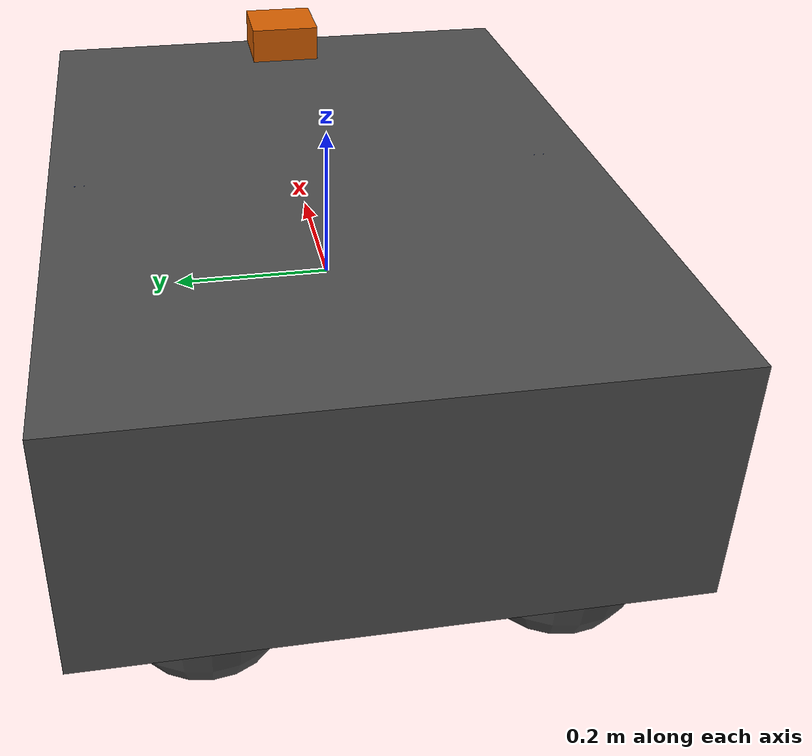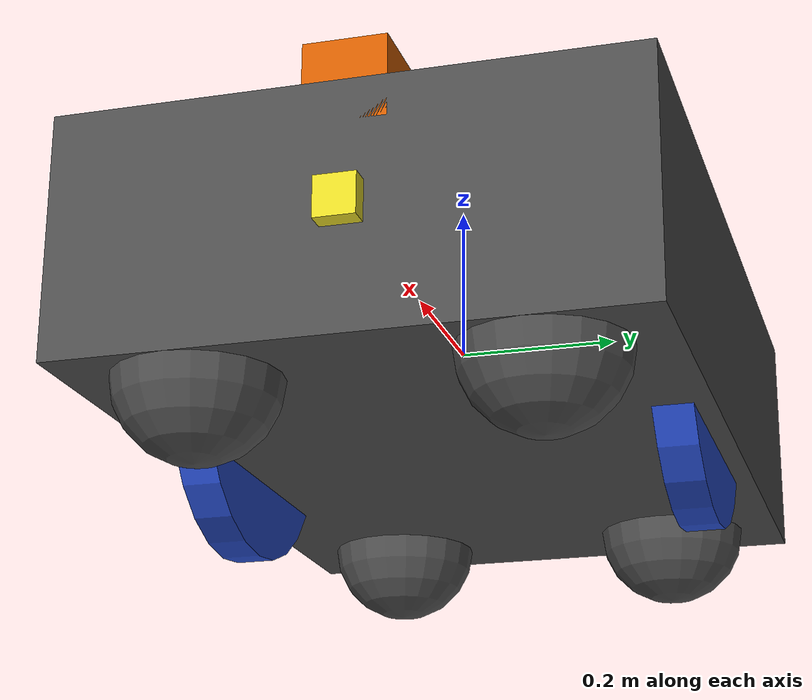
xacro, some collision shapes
<robot name="my_robot" xmlns:xacro="http://www.ros.org/wiki/xacro">
    <xacro:include filename="$(find my_robot)/urdf/my_robot.gazebo"/>
    <link name="robot_footprint"/>
    <joint name="robot_footprint_joint" type="fixed">
        <origin xyz="0 0 0" rpy="0 0 0"/>
        <parent link="robot_footprint"/>
        <child link="chassis"/>
    </joint>
    <link name='chassis'>
        <pose>0 0 0.3 0 0 0</pose>

        <inertial>
            <mass value="15.0"/>
            <origin xyz="0.0 0 0" rpy=" 0 0 0"/>
            <inertia
                ixx="0.1" ixy="0" ixz="0"
                iyy="0.1" iyz="0"
                izz="0.1"
            />
        </inertial>

        <collision name='collision'>
            <origin xyz="0 0 0" rpy=" 0 0 0"/>
            <geometry>
                <box size="1.0 .7 .3"/>
            </geometry>
        </collision>

        <visual name='chassis_visual'>
        <origin xyz="0 0 0" rpy=" 0 0 0"/>
            <geometry>
                <box size="1.0 .7 .3"/>
            </geometry>
        </visual>

        <collision name='back_right_caster_collision'>
            <origin xyz="-0.4 -0.2 -0.15" rpy=" 0 0 0"/>
            <geometry>
                <sphere radius="0.1"/>
            </geometry>
        </collision>

        <visual name='back_right_caster_visual'>
            <origin xyz="-0.4 -0.2 -0.15" rpy=" 0 0 0"/>
            <geometry>
                <sphere radius="0.1"/>
            </geometry>
        </visual>

        <collision name='front_right_caster_collision'>
            <origin xyz="0.4 -0.2 -0.15" rpy=" 0 0 0"/>
            <geometry>
                <sphere radius="0.1"/>
            </geometry>
        </collision>

        <visual name='front_right_caster_visual'>
            <origin xyz="0.4 -0.2 -0.15" rpy=" 0 0 0"/>
            <geometry>
                <sphere radius="0.1"/>
            </geometry>
        </visual>

        <collision name='back_left_caster_collision'>
            <origin xyz="-0.4 0.2 -0.15" rpy=" 0 0 0"/>
            <geometry>
                <sphere radius="0.1"/>
            </geometry>
        </collision>

        <visual name='back_left_caster_visual'>
            <origin xyz="-0.4 0.2 -0.15" rpy=" 0 0 0"/>
            <geometry>
                <sphere radius="0.1"/>
            </geometry>
        </visual>

        <collision name='front_left_caster_collision'>
            <origin xyz="0.4 0.2 -0.15" rpy=" 0 0 0"/>
            <geometry>
                <sphere radius="0.1"/>
            </geometry>
        </collision>

        <visual name='front_left_caster_visual'>
            <origin xyz="0.4 0.2 -0.15" rpy=" 0 0 0"/>
            <geometry>
                <sphere radius="0.1"/>
            </geometry>
        </visual>
  </link>

  <link name="right_wheel">
    <visual name='right_wheel_visual'>
      <origin xyz="0 0 0 " rpy="0 1.57 1.57"/>
      <geometry>
        <cylinder length="0.05" radius="0.2"/>
      </geometry>
    </visual>

    <collision name="right_wheel_collsion">
      <origin xyz="0 0 0 " rpy="0 1.57 1.57"/>
      <geometry>
        <cylinder length="0.05" radius="0.2"/>
      </geometry>
    </collision>

    <inertial>
      <mass value="5"/>
      <inertia
           ixx="0.1" ixy="0" ixz="0"
           iyy="0.1" iyz="0"
           izz="0.1"
      />
    </inertial>
  </link>
  <link name="left_wheel">
    <visual name='left_wheel_visual'>
      <origin xyz="0 0 0 " rpy="0 1.57 1.57"/>
      <geometry>
        <cylinder length="0.05" radius="0.2"/>
      </geometry>
    </visual>

    <collision name="left_wheel_collsion">
      <origin xyz="0 0 0 " rpy="0 1.57 1.57"/>
      <geometry>
        <cylinder length="0.05" radius="0.2"/>
      </geometry>
    </collision>

    <inertial>
      <mass value="5"/>
      <inertia
           ixx="0.1" ixy="0" ixz="0"
           iyy="0.1" iyz="0"
           izz="0.1"
      />
    </inertial>
  </link>

  <link name="camera">
    <visual name="camera_visual">
      <origin xyz="0 0 0 " rpy="0 0 0"/>
      <geometry>
        <box size=".05 .05 .05"/>
      </geometry>
    </visual>

    <collision name="camera_collsion">
      <origin xyz="0 0 0 " rpy="0 0 0"/>
      <geometry>
        <box size=".05 .05 .05"/>
      </geometry>
    </collision>

    <inertial>
      <origin xyz="0 0 0 " rpy="0 0 0"/>
      <mass value="0.1"/>
      <box_inertia m="0.1" x=".05" y=".05" z=".05"/>
      <inertia
           ixx="1e-6" ixy="0" ixz="0"
           iyy="1e-6" iyz="0"
           izz="1e-6"
      />
    </inertial>
  </link>

  <link name="hokuyo">
    <visual name="hokuyo_visual">
      <origin xyz="0 0 0 " rpy="0 0 0"/>
      <geometry>
          <mesh filename="package://my_robot/meshes/hokuyo.dae"/>
      </geometry>
    </visual>

    <collision name="hokuyo_collsion">
      <origin xyz="0 0 0 " rpy="0 0 0"/>
      <geometry>
        <box size=".1 .1 .1"/>
      </geometry>
    </collision>

    <inertial>
      <origin xyz="0 0 0 " rpy="0 0 0"/>
      <mass value="1e-5"/>
      <inertia
           ixx="1e-6" ixy="0" ixz="0"
           iyy="1e-6" iyz="0"
           izz="1e-6"
      />
    </inertial>
  </link>

  <joint name="hokuyo_joint" type="fixed">
    <origin xyz="0.45 0 0.15" rpy="0 0 0"/>
    <child link="hokuyo"/>
    <parent link="chassis"/>
    <axis xyz="0 1 0"/>
  </joint>

  <joint name="camera_joint" type="fixed">
    <origin xyz="0.5 0 0" rpy="0 0 0"/>
    <child link="camera"/>
    <parent link="chassis"/>
    <axis xyz="0 1 0"/>
  </joint>

  <joint type="continuous" name="right_wheel_hinge">
    <origin xyz="0 -0.3 -0.05" rpy="0 0 0"/>
    <child link="right_wheel"/>
    <parent link="chassis"/>
    <axis xyz="0 1 0" rpy="0 0 0"/>
    <limit effort="10000" velocity="1000"/>
    <dynamics damping="1.0" friction="1.0"/>
  </joint>

  <joint type="continuous" name="left_wheel_hinge">
    <origin xyz="0 0.3 -0.05" rpy="0 0 0"/>
    <child link="left_wheel"/>
    <parent link="chassis"/>
    <axis xyz="0 1 0" rpy="0 0 0"/>
    <limit effort="10000" velocity="1000"/>
    <dynamics damping="1.0" friction="1.0"/>
  </joint>

  <gazebo reference="left_wheel">
    <material>Gazebo/BlueGlow</material>
  </gazebo>

  <gazebo reference="right_wheel">
    <material>Gazebo/BlueGlow</material>
  </gazebo>

  <gazebo reference="chassis">
    <material>Gazebo/DarkGrey</material>
  </gazebo>

  <gazebo reference="camera">
    <material>Gazebo/Yellow</material>
  </gazebo>

</robot>
